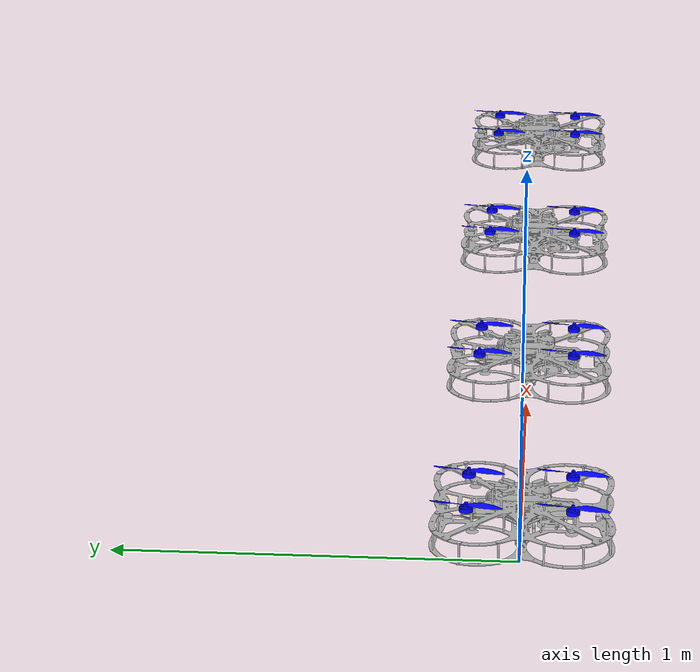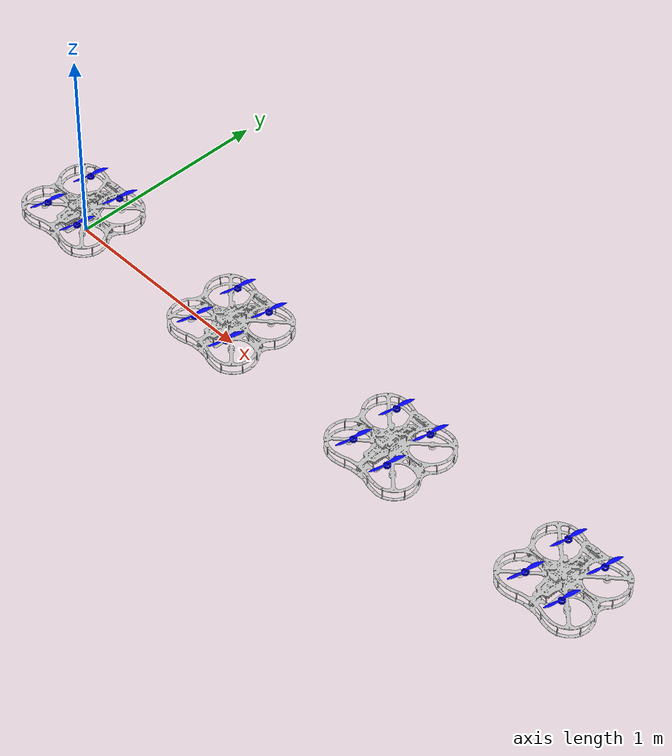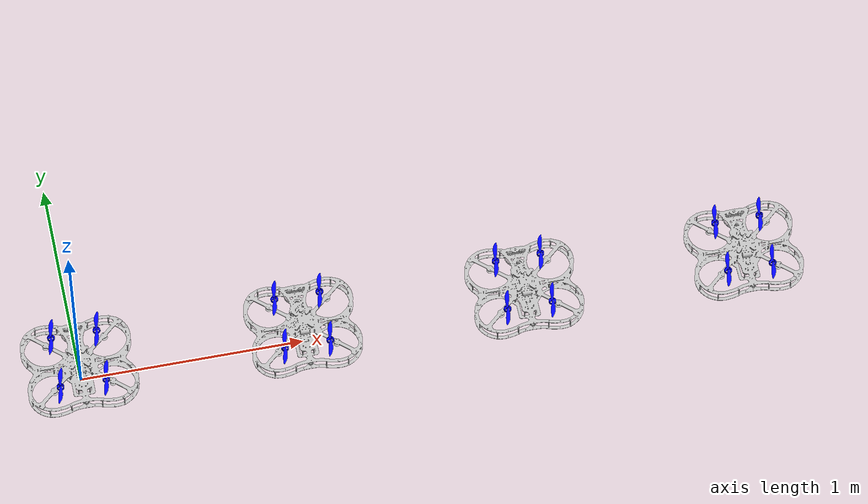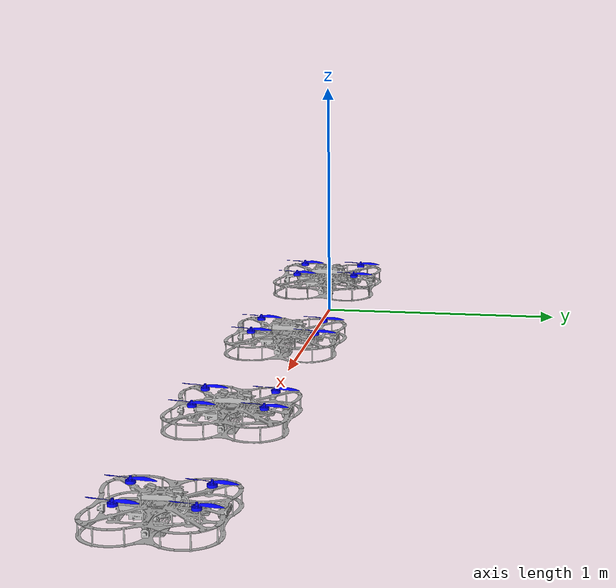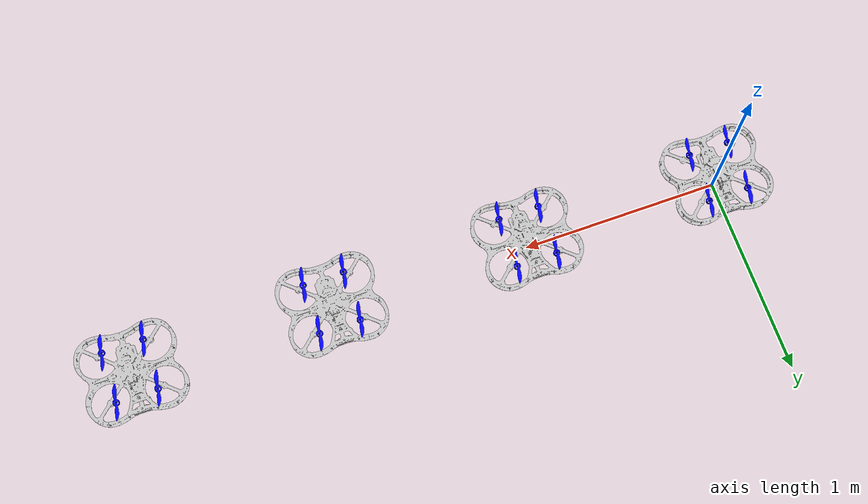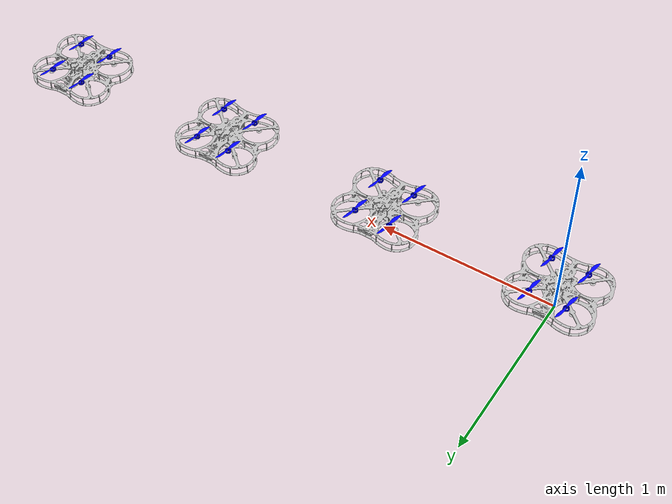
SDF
<sdf version="1.9">
  <world name="world_demo">
    <physics type="dart">
    <!--4ms step-->
      <max_step_size>0.001</max_step_size>
      <real_time_factor>0</real_time_factor>
      <real_time_update_rate>5000000</real_time_update_rate>
      <dart>
        <solver><solver_type>dantzig</solver_type></solver>
        <collision_detector>bullet</collision_detector>
      </dart>
    </physics>

    <plugin name="gz::sim::systems::Physics" filename="gz-sim-physics-system">
        <engine>
          <filename>gz-physics-dartsim-plugin</filename>
        </engine>
    </plugin>

    <gravity>0 0 -9.82</gravity>
    <magnetic_field>6e-06 2.3e-05 -4.2e-05</magnetic_field>
    <atmosphere type="adiabatic" />
    <scene>
      <ambient>0.4 0.4 0.4 1</ambient>
      <background>0.7 0.7 0.8 1</background>
      <shadows>true</shadows>
      <sky>
      <sunrise>10</sunrise>
      </sky>
      <grid>false</grid>
      <origin_visual>false</origin_visual>
    </scene>

    <light name="sun" type="directional">
      <pose>0 0 10 0 -0 0</pose>
      <cast_shadows>false</cast_shadows>
      <intensity>1</intensity>
      <direction>-0.5 0.1 -0.9</direction>
    <visualize>false</visualize>
    </light>

     <light name="lights1" type="directional">
      <pose>0 0 3 0 -0 0</pose>
      <cast_shadows>false</cast_shadows>
      <intensity>1</intensity>
      <direction>0 0 -1</direction>
    <visualize>false</visualize>
    </light>
    <light name="lights2" type="directional">
      <pose>1 0 3 0 -0 0</pose>
      <cast_shadows>false</cast_shadows>
      <intensity>1</intensity>
      <direction>0 0 -1</direction>
    <visualize>false</visualize>
    </light>

    <light name="lights3" type="directional">
      <pose>-1 0 3 0 -0 0</pose>
      <cast_shadows>false</cast_shadows>
      <intensity>1</intensity>
      <direction>0 0 -1</direction>
    <visualize>false</visualize>
    </light>

    <light name="lights4" type="directional">
      <pose>0 1 3 0 -0 0</pose>
      <cast_shadows>false</cast_shadows>
      <intensity>1</intensity>
      <direction>0 0 -1</direction>
    <visualize>false</visualize>
    </light>

    <light name="lights5" type="directional">
      <pose>0 1 3 0 -0 0</pose>
      <cast_shadows>false</cast_shadows>
      <intensity>1</intensity>
      <direction>0 0 -1</direction>
    <visualize>false</visualize>
    </light>

  <!--jinja template for gates and waypts-->

 <include>
        <uri>model://quadrotor.sdf</uri>
        <name>quadrotor1</name>
        <pose>0 0. 0.15 0 0 0</pose>
    </include>
    <include>
        <uri>model://quadrotor.sdf</uri>
        <name>quadrotor2</name>
        <pose>1 0. 0.15 0 0 0</pose>
    </include>
    <include>
        <uri>model://quadrotor.sdf</uri>
        <name>quadrotor3</name>
        <pose>2 0. 0.15 0 0 0</pose>
    </include>
    <include>
        <uri>model://quadrotor.sdf</uri>
        <name>quadrotor4</name>
        <pose>3 0. 0.15 0 0 0</pose>
    </include>
  </world>
</sdf>

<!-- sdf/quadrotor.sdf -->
<sdf version='1.11'>
  <model name='quadrotor'>

    <enable_wind>1</enable_wind>
    <link name='quadrotor/base_link'>
      <inertial>
        <pose>0 0 0 0 0 0</pose>
        <mass>1.52</mass>
        <inertia>
          <ixx>14387108.65e-9</ixx>
          <iyy>16559882.52e-9</iyy>
          <izz>28784890.45e-9</izz>
        </inertia>
      </inertial>
      <collision name='quadrotor/base_link_inertia_collision_2'>
        <pose>0 0 0 0 0 0</pose>
        <geometry>
          <box>
            <size>0.2 0.2 0.05</size>
          </box>
        </geometry>
        <surface>
          <contact>
            <collide_without_contact>1</collide_without_contact>
          </contact>
        </surface>
      </collision>
      <visual name='quadrotor/base_link_inertia_visual_2'>
        <pose>0 0 0 3.1415920000000002 0 0</pose>
        <geometry>
          <mesh>
            <scale>1 1 1</scale>
            <uri>model://meshes/QDrone2_Combined.dae</uri>
          </mesh>
        </geometry>
      </visual>
      <sensor name='grayscale' type='camera'>
        <camera name='graycale'>
          <image>
            <width>640</width>
            <height>480</height>
            <format>L8</format>
          </image>
          <clip>
            <near>0.10000000000000001</near>
            <far>100</far>
          </clip>
          <noise>
            <type>gaussian</type>
            <mean>0</mean>
            <stddev>1e-3</stddev>
          </noise>

          <lens>
            <type>stereographic</type>
            <scale_to_hfov>1</scale_to_hfov>

              <intrinsics>

              <fx>381.47</fx>
              <fy>762.156</fy>
              <cx>297.96</cx>
              <cy>215.755</cy>

            </intrinsics>
            <projection>
              <p_fx>381.47</p_fx>
              <p_fy>762.156</p_fy>
              <p_cx>297.96</p_cx>
              <p_cy>215.755</p_cy>

            </projection>
          </lens>
        </camera>
        <always_on>false</always_on>
        <update_rate>30</update_rate>
        <visualize>false</visualize>
        <pose>0.125 0 -0.0375 3.14 1.57 3.14</pose>
      </sensor>
      <!--rgbd-->
       <sensor name='rgb' type='camera'>
        <camera name='rgb'>
          <image>
            <width>640</width>
            <height>480</height>
            <format>R8G8B8</format>
          </image>
          <clip>
            <near>0.10000000000000001</near>
            <far>100</far>
          </clip>
          <noise>
            <type>gaussian</type>
            <mean>0</mean>
            <stddev>1e-3</stddev>
          </noise>

          <lens>
            <type>stereographic</type>
            <scale_to_hfov>1</scale_to_hfov>

              <intrinsics>

              <fx>381.47</fx>
              <fy>762.156</fy> >
              <cx>297.96</cx>
              <cy>215.755</cy>

            </intrinsics>
            <projection>
              <p_fx>381.47</p_fx>
              <p_fy>762.156</p_fy>
              <p_cx>297.96</p_cx>
              <p_cy>215.755</p_cy>

            </projection>
          </lens>
        </camera>
        <always_on>false</always_on>
        <update_rate>30</update_rate>
        <visualize>false</visualize>
        <pose>0.15 0 0 0 0 0</pose>
      </sensor>
       <sensor name='depth' type='depth_camera'>
        <camera name='depth_cam'>
          <image>
            <width>640</width>
            <height>480</height>
            <format>R_FLOAT32</format>
          </image>
          <clip>
            <near>0.10000000000000001</near>
            <far>100</far>
          </clip>
          <noise>
            <type>gaussian</type>
            <mean>0</mean>
            <stddev>1e-3</stddev>
          </noise>
        </camera>
        <always_on>false</always_on>
        <update_rate>30</update_rate>
        <visualize>false</visualize>
        <pose>0.2 0 0 0 0 0</pose>
      </sensor>

      <!--IMU1 , we will use different noise params-->
      <!-- range sensor using lidar-->
      <!-- we will only use a single vertical ray-->
    </link>

    <joint name='quadrotor/rotor_0_joint' type='revolute'>
      <pose relative_to='quadrotor/base_link'>-0.1016 -0.127 0.023 0 0 0</pose>
      <parent>quadrotor/base_link</parent>
      <child>quadrotor/rotor_0</child>
      <axis>
        <xyz>0 0 1</xyz>
        <limit>
          <lower>-inf</lower>
          <upper>inf</upper>
        </limit>
        <dynamics>
          <spring_reference>0</spring_reference>
          <spring_stiffness>0</spring_stiffness>
        </dynamics>
      </axis>
    </joint>
    <link name='quadrotor/rotor_0'>
      <pose relative_to='quadrotor/rotor_0_joint'>0 0 0 0 0 0</pose>
      <inertial>
        <pose>0 0 0 0 0 0</pose>
        <mass>0.0050000000000000001</mass>
        <inertia>
          <ixx>1.9500000000000001e-07</ixx>
          <ixy>0</ixy>
          <ixz>0</ixz>
          <iyy>3.3340833333333338e-05</iyy>
          <iyz>0</iyz>
          <izz>3.3520833333333339e-05</izz>
        </inertia>
      </inertial>
      <collision name='quadrotor/rotor_0_collision'>
        <pose>0 0 0 0 0 0</pose>
        <geometry>
          <cylinder>
            <length>0.0050000000000000001</length>
            <radius>0.10000000000000001</radius>
          </cylinder>
        </geometry>
        <surface>
          <contact>
            <ode/>
          </contact>
          <friction>
            <ode/>
          </friction>
        </surface>
      </collision>
      <visual name='quadrotor/rotor_0_visual'>
        <pose>0 0 0 0 0 0</pose>
        <geometry>
          <mesh>
            <scale>1 1 1</scale>
            <uri>model://meshes/motor_prop_assembly.dae</uri>
          </mesh>
        </geometry>
        <material>
          <ambient>0 0 1 1</ambient>
          <diffuse>0 0 1 1</diffuse>
          <specular>0.1 0.1 0.1 1</specular>
          <emissive>0 0 0 0</emissive>
      </material>
      </visual>
    </link>
    <joint name='quadrotor/rotor_1_joint' type='revolute'>
      <pose relative_to='quadrotor/base_link'>0.1016 -0.127 0.023 0 0 0</pose>
      <parent>quadrotor/base_link</parent>
      <child>quadrotor/rotor_1</child>
      <axis>
        <xyz>0 0 1</xyz>
        <limit>
          <lower>-inf</lower>
          <upper>inf</upper>
        </limit>
        <dynamics>
          <spring_reference>0</spring_reference>
          <spring_stiffness>0</spring_stiffness>
        </dynamics>
      </axis>
    </joint>
    <link name='quadrotor/rotor_1'>
      <pose relative_to='quadrotor/rotor_1_joint'>0 0 0 0 0 0</pose>
      <inertial>
        <pose>0 0 0 0 0 0</pose>
        <mass>0.0050000000000000001</mass>
        <inertia>
          <ixx>1.9500000000000001e-07</ixx>
          <ixy>0</ixy>
          <ixz>0</ixz>
          <iyy>3.3340833333333338e-05</iyy>
          <iyz>0</iyz>
          <izz>3.3520833333333339e-05</izz>
        </inertia>
      </inertial>
      <collision name='quadrotor/rotor_1_collision'>
        <pose>0 0 0 0 0 0</pose>
        <geometry>
          <cylinder>
            <length>0.0050000000000000001</length>
            <radius>0.10000000000000001</radius>
          </cylinder>
        </geometry>
        <surface>
          <contact>
            <ode/>
          </contact>
          <friction>
            <ode/>
          </friction>
        </surface>
      </collision>
      <visual name='quadrotor/rotor_1_visual'>
        <pose>0 0 0 0 0 0</pose>
        <geometry>
          <mesh>
            <scale>1 1 1</scale>
            <uri>model://meshes/motor_prop_assembly.dae</uri>
          </mesh>
        </geometry>
        <material>
          <ambient>0 0 1 1</ambient>
          <diffuse>0 0 1 1</diffuse>
          <specular>0.1 0.1 0.1 1</specular>
          <emissive>0 0 0 0</emissive>
      </material>
      </visual>
    </link>
    <joint name='quadrotor/rotor_2_joint' type='revolute'>
      <pose relative_to='quadrotor/base_link'>-0.1016 0.127 0.023 0 0 0</pose>
      <parent>quadrotor/base_link</parent>
      <child>quadrotor/rotor_2</child>
      <axis>
        <xyz>0 0 1</xyz>
        <limit>
          <lower>-inf</lower>
          <upper>inf</upper>
        </limit>
        <dynamics>
          <spring_reference>0</spring_reference>
          <spring_stiffness>0</spring_stiffness>
        </dynamics>
      </axis>
    </joint>
    <link name='quadrotor/rotor_2'>
      <pose relative_to='quadrotor/rotor_2_joint'>0 0 0 0 0 0</pose>
      <inertial>
        <pose>0 0 0 0 0 0</pose>
        <mass>0.0050000000000000001</mass>
        <inertia>
          <ixx>1.9500000000000001e-07</ixx>
          <ixy>0</ixy>
          <ixz>0</ixz>
          <iyy>3.3340833333333338e-05</iyy>
          <iyz>0</iyz>
          <izz>3.3520833333333339e-05</izz>
        </inertia>
      </inertial>
      <collision name='quadrotor/rotor_2_collision'>
        <pose>0 0 0 0 0 0</pose>
        <geometry>
          <cylinder>
            <length>0.0050000000000000001</length>
            <radius>0.10000000000000001</radius>
          </cylinder>
        </geometry>
        <surface>
          <contact>
            <ode/>
          </contact>
          <friction>
            <ode/>
          </friction>
        </surface>
      </collision>
      <visual name='quadrotor/rotor_2_visual'>
        <pose>0 0 0 0 0 0</pose>
        <geometry>
          <mesh>
            <scale>1 1 1</scale>
            <uri>model://meshes/motor_prop_assembly.dae</uri>
          </mesh>
        </geometry>
        <material>
          <ambient>0 0 1 1</ambient>
          <diffuse>0 0 1 1</diffuse>
          <specular>0.1 0.1 0.1 1</specular>
          <emissive>0 0 0 0</emissive>
      </material>
      </visual>
    </link>
    <joint name='quadrotor/rotor_3_joint' type='revolute'>
      <pose relative_to='quadrotor/base_link'>0.1016 0.127 0.023 0 0 0</pose>
      <parent>quadrotor/base_link</parent>
      <child>quadrotor/rotor_3</child>
      <axis>
        <xyz>0 0 1</xyz>
        <limit>
          <lower>-inf</lower>
          <upper>inf</upper>
        </limit>
        <dynamics>
          <spring_reference>0</spring_reference>
          <spring_stiffness>0</spring_stiffness>
        </dynamics>
      </axis>
    </joint>
    <link name='quadrotor/rotor_3'>
      <pose relative_to='quadrotor/rotor_3_joint'>0 0 0 0 0 0</pose>
      <inertial>
        <pose>0 0 0 0 0 0</pose>
        <mass>0.0050000000000000001</mass>
        <inertia>
          <ixx>1.9500000000000001e-07</ixx>
          <ixy>0</ixy>
          <ixz>0</ixz>
          <iyy>3.3340833333333338e-05</iyy>
          <iyz>0</iyz>
          <izz>3.3520833333333339e-05</izz>
        </inertia>
      </inertial>
      <collision name='quadrotor/rotor_3_collision'>
        <pose>0 0 0 0 0 0</pose>
        <geometry>
          <cylinder>
            <length>0.0050000000000000001</length>
            <radius>0.10000000000000001</radius>
          </cylinder>
        </geometry>
        <surface>
          <contact>
            <ode/>
          </contact>
          <friction>
            <ode/>
          </friction>
        </surface>
      </collision>
      <visual name='quadrotor/rotor_3_visual'>
        <pose>0 0 0 0 0 0</pose>
        <geometry>
          <mesh>
            <scale>1 1 1</scale>
            <uri>model://meshes/motor_prop_assembly.dae</uri>
          </mesh>
        </geometry>
        <material>
          <ambient>0 0 1 1</ambient>
          <diffuse>0 0 1 1</diffuse>
          <specular>0.1 0.1 0.1 1</specular>
          <emissive>0 0 0 0</emissive>
      </material>
      </visual>
    </link>

    <plugin name='gz::sim::systems::MultiRotorPlugin' filename='rotor_plugin'>
      <parentLink>quadrotor/base_link</parentLink>
      <linkNames>quadrotor/rotor_0 quadrotor/rotor_1 quadrotor/rotor_2 quadrotor/rotor_3</linkNames>
      <turningDirections>1 -1 -1 1</turningDirections>
      <timeConstantUp>0.0125</timeConstantUp>
      <timeConstantDown>0.025</timeConstantDown>
      <maxRotVelocity>2246.0</maxRotVelocity>
      <thrustConstantQuadraticParams>1.9533e-6 0 0</thrustConstantQuadraticParams>

      <groundEffectConstant>1.17198e-09</groundEffectConstant>
      <momentConstantQuadraticParams>2.8400982e-08  0 0</momentConstantQuadraticParams>
      <downWashCoefficients>0.0 0.0 0.0</downWashCoefficients>
      <otherUavNames></otherUavNames>
      <rotorInertia>4.92e-6</rotorInertia>
      <rotorDragCoefficient>0.000020673</rotorDragCoefficient>
      <rollingMomentCoefficient>1e-9</rollingMomentCoefficient>
      <rotorVelocitySlowdownSim>2</rotorVelocitySlowdownSim>
    </plugin>

    <frame name='cam_joint' attached_to='quadrotor/base_link'>
      <pose>0 0 0 0 0 0</pose>
    </frame>
    <frame name='cam_link' attached_to='cam_joint'>
      <pose>0 0 0 0 0 0</pose>
    </frame>
    <frame name='imu_joint' attached_to='quadrotor/base_link'>
      <pose>0 0 0 0 0 0</pose>
    </frame>
    <frame name='imu_link' attached_to='imu_joint'>
      <pose>0 0 0 0 0 0</pose>
    </frame>
    <frame name='quadrotor/base_joint' attached_to='quadrotor/base_link'>
      <pose>0 0 0 0 0 0</pose>
    </frame>
    <frame name='quadrotor/base_link_inertia' attached_to='quadrotor/base_joint'>
      <pose>0 0 0 0 0 0</pose>
    </frame>
  </model>
</sdf>
